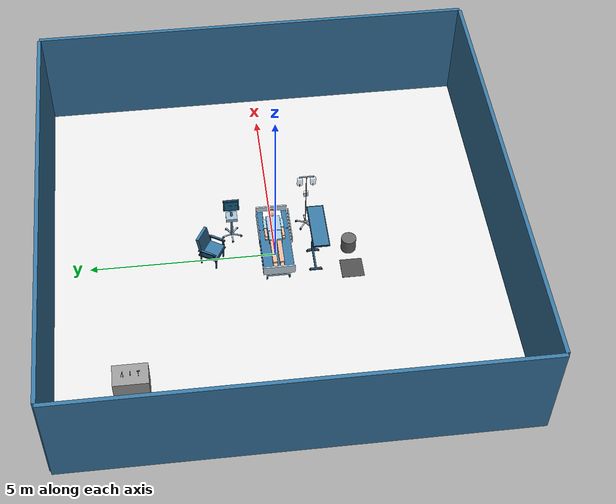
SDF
<sdf version="1.6">
 <world name="sala_chirurgica">
  <gravity>0 0 -9.8</gravity>
  <physics default="0" name="default_physics" type="ode">
   <max_step_size>0.0045</max_step_size>
   <real_time_factor>1</real_time_factor>
   <real_time_update_rate>0</real_time_update_rate>
  </physics>
  <scene><ambient>0.8 0.8 0.8 1</ambient><background>0.3 0.3 0.3 1</background><shadows>false</shadows></scene>
  <light name="sun" type="directional">
   <cast_shadows>false</cast_shadows>
   <pose>0 0 10 0 0 0</pose>
   <diffuse>0.9 0.9 0.9 1</diffuse>
   <specular>0.0 0.0 0.0 1</specular>
   <direction>-0.5 0.1 -0.9</direction>
  </light>
  <model name="white_floor">
   <static>true</static>
   <link name="link">
    <collision name="collision"><geometry><box><size>12 12 0.02</size></box></geometry></collision>
    <visual name="visual">
     <geometry><box><size>12 12 0.02</size></box></geometry>
     <material>
      <ambient>0.9 0.9 0.9 1</ambient>
      <diffuse>0.9 0.9 0.9 1</diffuse>
      <specular>0.0 0.0 0.0 1</specular>
     </material>
    </visual>
   </link>
  </model>
  <model name="walls">
   <static>true</static>
   <link name="link">
    <visual name="v_n">
     <pose>0 6 1.5 0 0 0</pose>
     <geometry><box><size>11.9 0.1 3</size></box></geometry>
     <material>
      <ambient>0.22 0.47 0.64 1</ambient>
      <diffuse>0.22 0.47 0.64 1</diffuse>
      <specular>0.1 0.1 0.1 1</specular>
     </material>
    </visual>
    <collision name="c_n">
     <pose>0 6 1.5 0 0 0</pose>
     <geometry><box><size>11.9 0.1 3</size></box></geometry>
    </collision>
    <visual name="v_s">
     <pose>0 -6 1.5 0 0 0</pose>
     <geometry><box><size>11.9 0.1 3</size></box></geometry>
     <material>
      <ambient>0.22 0.47 0.64 1</ambient>
      <diffuse>0.22 0.47 0.64 1</diffuse>
      <specular>0.1 0.1 0.1 1</specular>
     </material>
    </visual>
    <collision name="c_s">
     <pose>0 -6 1.5 0 0 0</pose>
     <geometry><box><size>11.9 0.1 3</size></box></geometry>
    </collision>
    <visual name="v_e">
     <pose>6 0 1.5 0 0 0</pose>
     <geometry><box><size>0.1 12 3</size></box></geometry>
     <material>
      <ambient>0.22 0.47 0.64 1</ambient>
      <diffuse>0.22 0.47 0.64 1</diffuse>
      <specular>0.1 0.1 0.1 1</specular>
     </material>
    </visual>
    <collision name="c_e">
     <pose>6 0 1.5 0 0 0</pose>
     <geometry><box><size>0.1 12 3</size></box></geometry>
    </collision>
    <visual name="v_w">
     <pose>-6 0 1.5 0 0 0</pose>
     <geometry><box><size>0.1 12 3</size></box></geometry>
     <material>
      <ambient>0.22 0.47 0.64 1</ambient>
      <diffuse>0.22 0.47 0.64 1</diffuse>
      <specular>0.1 0.1 0.1 1</specular>
     </material>
    </visual>
    <collision name="c_w">
     <pose>-6 0 1.5 0 0 0</pose>
     <geometry><box><size>0.1 12 3</size></box></geometry>
    </collision>
   </link>
  </model>
  <model name="trolley_bed_patient">
   <static>true</static>
   <link name="bed_link">
    <visual name="v1">
     <pose>0 -0.3 0.14 0 0 0</pose>
     <geometry><box><size>1.7 0.04 0.05</size></box></geometry>
     <material>
      <ambient>0.66 0.76 0.83 1</ambient>
      <diffuse>0.66 0.76 0.83 1</diffuse>
      <specular>0.5 0.5 0.5 1</specular>
     </material>
    </visual>
    <visual name="v2">
     <pose>-0.8 0 0.14 0 0 0</pose>
     <geometry><box><size>0.04 0.64 0.05</size></box></geometry>
     <material>
      <ambient>0.66 0.76 0.83 1</ambient>
      <diffuse>0.66 0.76 0.83 1</diffuse>
      <specular>0.5 0.5 0.5 1</specular>
     </material>
    </visual>
    <visual name="v3">
     <pose>-0.5 0 0.31 0 0 0</pose>
     <geometry><box><size>0.12 0.4 0.34</size></box></geometry>
     <material>
      <ambient>0.62 0.74 0.82 1</ambient>
      <diffuse>0.62 0.74 0.82 1</diffuse>
      <specular>0.1 0.1 0.1 1</specular>
     </material>
    </visual>
    <collision name="c3">
     <pose>-0.5 0 0.31 0 0 0</pose>
     <geometry><box><size>0.12 0.4 0.34</size></box></geometry>
    </collision>
    <visual name="v4">
     <pose>-0.8 -0.3 0.06 1.5708 0 0</pose>
     <geometry><cylinder><radius>0.06</radius><length>0.035</length></cylinder></geometry>
     <material>
      <ambient>0.15 0.3 0.42 1</ambient>
      <diffuse>0.15 0.3 0.42 1</diffuse>
      <specular>0.1 0.1 0.1 1</specular>
     </material>
    </visual>
    <visual name="v5">
     <pose>-0.8 0.3 0.06 1.5708 0 0</pose>
     <geometry><cylinder><radius>0.06</radius><length>0.035</length></cylinder></geometry>
     <material>
      <ambient>0.15 0.3 0.42 1</ambient>
      <diffuse>0.15 0.3 0.42 1</diffuse>
      <specular>0.1 0.1 0.1 1</specular>
     </material>
    </visual>
    <visual name="v6">
     <pose>0 0.3 0.14 0 0 0</pose>
     <geometry><box><size>1.7 0.04 0.05</size></box></geometry>
     <material>
      <ambient>0.66 0.76 0.83 1</ambient>
      <diffuse>0.66 0.76 0.83 1</diffuse>
      <specular>0.5 0.5 0.5 1</specular>
     </material>
    </visual>
    <visual name="v7">
     <pose>0.8 0 0.14 0 0 0</pose>
     <geometry><box><size>0.04 0.64 0.05</size></box></geometry>
     <material>
      <ambient>0.66 0.76 0.83 1</ambient>
      <diffuse>0.66 0.76 0.83 1</diffuse>
      <specular>0.5 0.5 0.5 1</specular>
     </material>
    </visual>
    <visual name="v8">
     <pose>0.5 0 0.31 0 0 0</pose>
     <geometry><box><size>0.12 0.4 0.34</size></box></geometry>
     <material>
      <ambient>0.62 0.74 0.82 1</ambient>
      <diffuse>0.62 0.74 0.82 1</diffuse>
      <specular>0.1 0.1 0.1 1</specular>
     </material>
    </visual>
    <collision name="c8">
     <pose>0.5 0 0.31 0 0 0</pose>
     <geometry><box><size>0.12 0.4 0.34</size></box></geometry>
    </collision>
    <visual name="v9">
     <pose>0.8 -0.3 0.06 1.5708 0 0</pose>
     <geometry><cylinder><radius>0.06</radius><length>0.035</length></cylinder></geometry>
     <material>
      <ambient>0.15 0.3 0.42 1</ambient>
      <diffuse>0.15 0.3 0.42 1</diffuse>
      <specular>0.1 0.1 0.1 1</specular>
     </material>
    </visual>
    <visual name="v10">
     <pose>0.8 0.3 0.06 1.5708 0 0</pose>
     <geometry><cylinder><radius>0.06</radius><length>0.035</length></cylinder></geometry>
     <material>
      <ambient>0.15 0.3 0.42 1</ambient>
      <diffuse>0.15 0.3 0.42 1</diffuse>
      <specular>0.1 0.1 0.1 1</specular>
     </material>
    </visual>
    <collision name="c11">
     <pose>0 0 0.14 0 0 0</pose>
     <geometry><box><size>1.7 0.64 0.05</size></box></geometry>
    </collision>
    <visual name="v12">
     <pose>0 0 0.505 0 0 0</pose>
     <geometry><box><size>2 0.84 0.05</size></box></geometry>
     <material>
      <ambient>0.62 0.74 0.82 1</ambient>
      <diffuse>0.62 0.74 0.82 1</diffuse>
      <specular>0.1 0.1 0.1 1</specular>
     </material>
    </visual>
    <collision name="c12">
     <pose>0 0 0.505 0 0 0</pose>
     <geometry><box><size>2 0.84 0.05</size></box></geometry>
    </collision>
    <visual name="v13">
     <pose>0 0 0.59 0 0 0</pose>
     <geometry><box><size>1.96 0.8 0.12</size></box></geometry>
     <material>
      <ambient>0.22 0.47 0.64 1</ambient>
      <diffuse>0.22 0.47 0.64 1</diffuse>
      <specular>0.15 0.15 0.15 1</specular>
     </material>
    </visual>
    <collision name="c13">
     <pose>0 0 0.59 0 0 0</pose>
     <geometry><box><size>1.96 0.8 0.12</size></box></geometry>
    </collision>
    <visual name="v14">
     <pose>0.35 0 0.651 0 0 0</pose>
     <geometry><box><size>0.01 0.8 0.002</size></box></geometry>
     <material>
      <ambient>0.12 0.27 0.38 1</ambient>
      <diffuse>0.12 0.27 0.38 1</diffuse>
      <specular>0.1 0.1 0.1 1</specular>
     </material>
    </visual>
    <visual name="v15">
     <pose>1.02 0 0.65 0 0 0</pose>
     <geometry><box><size>0.04 0.84 0.34</size></box></geometry>
     <material>
      <ambient>0.78 0.87 0.92 1</ambient>
      <diffuse>0.78 0.87 0.92 1</diffuse>
      <specular>0.1 0.1 0.1 1</specular>
     </material>
    </visual>
    <collision name="c15">
     <pose>1.02 0 0.65 0 0 0</pose>
     <geometry><box><size>0.04 0.84 0.34</size></box></geometry>
    </collision>
    <visual name="v16">
     <pose>-1.02 0 0.62 0 0 0</pose>
     <geometry><box><size>0.04 0.84 0.28</size></box></geometry>
     <material>
      <ambient>0.78 0.87 0.92 1</ambient>
      <diffuse>0.78 0.87 0.92 1</diffuse>
      <specular>0.1 0.1 0.1 1</specular>
     </material>
    </visual>
    <collision name="c16">
     <pose>-1.02 0 0.62 0 0 0</pose>
     <geometry><box><size>0.04 0.84 0.28</size></box></geometry>
    </collision>
    <visual name="v17">
     <pose>0.3 -0.43 0.9 0 0 0</pose>
     <geometry><box><size>1 0.025 0.025</size></box></geometry>
     <material>
      <ambient>0.66 0.76 0.83 1</ambient>
      <diffuse>0.66 0.76 0.83 1</diffuse>
      <specular>0.6 0.6 0.6 1</specular>
     </material>
    </visual>
    <visual name="v18">
     <pose>0.3 -0.43 0.78 0 0 0</pose>
     <geometry><box><size>1 0.025 0.025</size></box></geometry>
     <material>
      <ambient>0.66 0.76 0.83 1</ambient>
      <diffuse>0.66 0.76 0.83 1</diffuse>
      <specular>0.6 0.6 0.6 1</specular>
     </material>
    </visual>
    <visual name="v19">
     <pose>-0.2 -0.43 0.82 0 0 0</pose>
     <geometry><box><size>0.025 0.025 0.2</size></box></geometry>
     <material>
      <ambient>0.66 0.76 0.83 1</ambient>
      <diffuse>0.66 0.76 0.83 1</diffuse>
      <specular>0.6 0.6 0.6 1</specular>
     </material>
    </visual>
    <visual name="v20">
     <pose>0.8 -0.43 0.82 0 0 0</pose>
     <geometry><box><size>0.025 0.025 0.2</size></box></geometry>
     <material>
      <ambient>0.66 0.76 0.83 1</ambient>
      <diffuse>0.66 0.76 0.83 1</diffuse>
      <specular>0.6 0.6 0.6 1</specular>
     </material>
    </visual>
    <visual name="v21">
     <pose>0.3 0.43 0.9 0 0 0</pose>
     <geometry><box><size>1 0.025 0.025</size></box></geometry>
     <material>
      <ambient>0.66 0.76 0.83 1</ambient>
      <diffuse>0.66 0.76 0.83 1</diffuse>
      <specular>0.6 0.6 0.6 1</specular>
     </material>
    </visual>
    <visual name="v22">
     <pose>0.3 0.43 0.78 0 0 0</pose>
     <geometry><box><size>1 0.025 0.025</size></box></geometry>
     <material>
      <ambient>0.66 0.76 0.83 1</ambient>
      <diffuse>0.66 0.76 0.83 1</diffuse>
      <specular>0.6 0.6 0.6 1</specular>
     </material>
    </visual>
    <visual name="v23">
     <pose>-0.2 0.43 0.82 0 0 0</pose>
     <geometry><box><size>0.025 0.025 0.2</size></box></geometry>
     <material>
      <ambient>0.66 0.76 0.83 1</ambient>
      <diffuse>0.66 0.76 0.83 1</diffuse>
      <specular>0.6 0.6 0.6 1</specular>
     </material>
    </visual>
    <visual name="v24">
     <pose>0.8 0.43 0.82 0 0 0</pose>
     <geometry><box><size>0.025 0.025 0.2</size></box></geometry>
     <material>
      <ambient>0.66 0.76 0.83 1</ambient>
      <diffuse>0.66 0.76 0.83 1</diffuse>
      <specular>0.6 0.6 0.6 1</specular>
     </material>
    </visual>
    <visual name="v25">
     <pose>0.74 0 0.695 0 0 0</pose>
     <geometry><box><size>0.38 0.5 0.09</size></box></geometry>
     <material>
      <ambient>0.9 0.94 0.97 1</ambient>
      <diffuse>0.9 0.94 0.97 1</diffuse>
      <specular>0.1 0.1 0.1 1</specular>
     </material>
    </visual>
    <visual name="v26">
     <pose>0.74 0 0.84 0 0 0</pose>
     <geometry><sphere><radius>0.1</radius></sphere></geometry>
     <material>
      <ambient>0.9 0.72 0.6 1</ambient>
      <diffuse>0.9 0.72 0.6 1</diffuse>
      <specular>0.1 0.1 0.1 1</specular>
     </material>
    </visual>
    <visual name="v27">
     <pose>0.78 0 0.83 0 0 0</pose>
     <geometry><sphere><radius>0.09</radius></sphere></geometry>
     <material>
      <ambient>0.25 0.17 0.1 1</ambient>
      <diffuse>0.25 0.17 0.1 1</diffuse>
      <specular>0.1 0.1 0.1 1</specular>
     </material>
    </visual>
    <visual name="v28">
     <pose>0.4 0 0.75 0 0 0</pose>
     <geometry><box><size>0.5 0.36 0.2</size></box></geometry>
     <material>
      <ambient>0.62 0.78 0.88 1</ambient>
      <diffuse>0.62 0.78 0.88 1</diffuse>
      <specular>0.1 0.1 0.1 1</specular>
     </material>
    </visual>
    <collision name="c28">
     <pose>0.4 0 0.75 0 0 0</pose>
     <geometry><box><size>0.5 0.36 0.2</size></box></geometry>
    </collision>
    <visual name="v29">
     <pose>0 0 0.74 0 0 0</pose>
     <geometry><box><size>0.3 0.34 0.18</size></box></geometry>
     <material>
      <ambient>0.62 0.78 0.88 1</ambient>
      <diffuse>0.62 0.78 0.88 1</diffuse>
      <specular>0.1 0.1 0.1 1</specular>
     </material>
    </visual>
    <visual name="v30">
     <pose>-0.5 -0.09 0.72 0 0 0</pose>
     <geometry><box><size>0.75 0.12 0.12</size></box></geometry>
     <material>
      <ambient>0.9 0.72 0.6 1</ambient>
      <diffuse>0.9 0.72 0.6 1</diffuse>
      <specular>0.1 0.1 0.1 1</specular>
     </material>
    </visual>
    <visual name="v31">
     <pose>-0.93 -0.09 0.7 0 0 0</pose>
     <geometry><box><size>0.12 0.1 0.07</size></box></geometry>
     <material>
      <ambient>0.9 0.72 0.6 1</ambient>
      <diffuse>0.9 0.72 0.6 1</diffuse>
      <specular>0.1 0.1 0.1 1</specular>
     </material>
    </visual>
    <visual name="v32">
     <pose>0.45 -0.23 0.74 0 0 0</pose>
     <geometry><box><size>0.3 0.08 0.08</size></box></geometry>
     <material>
      <ambient>0.62 0.78 0.88 1</ambient>
      <diffuse>0.62 0.78 0.88 1</diffuse>
      <specular>0.1 0.1 0.1 1</specular>
     </material>
    </visual>
    <visual name="v33">
     <pose>0.18 -0.23 0.72 0 0 0</pose>
     <geometry><box><size>0.3 0.07 0.07</size></box></geometry>
     <material>
      <ambient>0.9 0.72 0.6 1</ambient>
      <diffuse>0.9 0.72 0.6 1</diffuse>
      <specular>0.1 0.1 0.1 1</specular>
     </material>
    </visual>
    <visual name="v34">
     <pose>0 -0.23 0.7 0 0 0</pose>
     <geometry><box><size>0.08 0.07 0.05</size></box></geometry>
     <material>
      <ambient>0.9 0.72 0.6 1</ambient>
      <diffuse>0.9 0.72 0.6 1</diffuse>
      <specular>0.1 0.1 0.1 1</specular>
     </material>
    </visual>
    <visual name="v35">
     <pose>-0.5 0.09 0.72 0 0 0</pose>
     <geometry><box><size>0.75 0.12 0.12</size></box></geometry>
     <material>
      <ambient>0.9 0.72 0.6 1</ambient>
      <diffuse>0.9 0.72 0.6 1</diffuse>
      <specular>0.1 0.1 0.1 1</specular>
     </material>
    </visual>
    <visual name="v36">
     <pose>-0.93 0.09 0.7 0 0 0</pose>
     <geometry><box><size>0.12 0.1 0.07</size></box></geometry>
     <material>
      <ambient>0.9 0.72 0.6 1</ambient>
      <diffuse>0.9 0.72 0.6 1</diffuse>
      <specular>0.1 0.1 0.1 1</specular>
     </material>
    </visual>
    <visual name="v37">
     <pose>0.45 0.23 0.74 0 0 0</pose>
     <geometry><box><size>0.3 0.08 0.08</size></box></geometry>
     <material>
      <ambient>0.62 0.78 0.88 1</ambient>
      <diffuse>0.62 0.78 0.88 1</diffuse>
      <specular>0.1 0.1 0.1 1</specular>
     </material>
    </visual>
    <visual name="v38">
     <pose>0.18 0.23 0.72 0 0 0</pose>
     <geometry><box><size>0.3 0.07 0.07</size></box></geometry>
     <material>
      <ambient>0.9 0.72 0.6 1</ambient>
      <diffuse>0.9 0.72 0.6 1</diffuse>
      <specular>0.1 0.1 0.1 1</specular>
     </material>
    </visual>
    <visual name="v39">
     <pose>0 0.23 0.7 0 0 0</pose>
     <geometry><box><size>0.08 0.07 0.05</size></box></geometry>
     <material>
      <ambient>0.9 0.72 0.6 1</ambient>
      <diffuse>0.9 0.72 0.6 1</diffuse>
      <specular>0.1 0.1 0.1 1</specular>
     </material>
    </visual>
   </link>
  </model>
  <model name="IVSTAND">
   <static>true</static>
   <pose>1.0 -0.95 0 0 0 0</pose>
   <link name="iv_link">
    <visual name="v1">
     <pose>0 0 0.075 0 0 0</pose>
     <geometry><cylinder><radius>0.045</radius><length>0.05</length></cylinder></geometry>
     <material>
      <ambient>0.72 0.75 0.78 1</ambient>
      <diffuse>0.72 0.75 0.78 1</diffuse>
      <specular>0.4 0.4 0.4 1</specular>
     </material>
    </visual>
    <visual name="v2">
     <pose>0.13 0 0.06 0 0 0</pose>
     <geometry><box><size>0.26 0.035 0.02</size></box></geometry>
     <material>
      <ambient>0.72 0.75 0.78 1</ambient>
      <diffuse>0.72 0.75 0.78 1</diffuse>
      <specular>0.4 0.4 0.4 1</specular>
     </material>
    </visual>
    <visual name="v3">
     <pose>0.26 0 0.03 0 0 0</pose>
     <geometry><sphere><radius>0.03</radius></sphere></geometry>
     <material>
      <ambient>0.22 0.23 0.25 1</ambient>
      <diffuse>0.22 0.23 0.25 1</diffuse>
      <specular>0.1 0.1 0.1 1</specular>
     </material>
    </visual>
    <visual name="v4">
     <pose>0.0401722 0.123637 0.06 0 0 1.25664</pose>
     <geometry><box><size>0.26 0.035 0.02</size></box></geometry>
     <material>
      <ambient>0.72 0.75 0.78 1</ambient>
      <diffuse>0.72 0.75 0.78 1</diffuse>
      <specular>0.4 0.4 0.4 1</specular>
     </material>
    </visual>
    <visual name="v5">
     <pose>0.0803444 0.247275 0.03 0 0 0</pose>
     <geometry><sphere><radius>0.03</radius></sphere></geometry>
     <material>
      <ambient>0.22 0.23 0.25 1</ambient>
      <diffuse>0.22 0.23 0.25 1</diffuse>
      <specular>0.1 0.1 0.1 1</specular>
     </material>
    </visual>
    <visual name="v6">
     <pose>-0.105172 0.0764121 0.06 0 0 2.51327</pose>
     <geometry><box><size>0.26 0.035 0.02</size></box></geometry>
     <material>
      <ambient>0.72 0.75 0.78 1</ambient>
      <diffuse>0.72 0.75 0.78 1</diffuse>
      <specular>0.4 0.4 0.4 1</specular>
     </material>
    </visual>
    <visual name="v7">
     <pose>-0.210344 0.152824 0.03 0 0 0</pose>
     <geometry><sphere><radius>0.03</radius></sphere></geometry>
     <material>
      <ambient>0.22 0.23 0.25 1</ambient>
      <diffuse>0.22 0.23 0.25 1</diffuse>
      <specular>0.1 0.1 0.1 1</specular>
     </material>
    </visual>
    <visual name="v8">
     <pose>-0.105172 -0.0764121 0.06 0 0 3.76991</pose>
     <geometry><box><size>0.26 0.035 0.02</size></box></geometry>
     <material>
      <ambient>0.72 0.75 0.78 1</ambient>
      <diffuse>0.72 0.75 0.78 1</diffuse>
      <specular>0.4 0.4 0.4 1</specular>
     </material>
    </visual>
    <visual name="v9">
     <pose>-0.210344 -0.152824 0.03 0 0 0</pose>
     <geometry><sphere><radius>0.03</radius></sphere></geometry>
     <material>
      <ambient>0.22 0.23 0.25 1</ambient>
      <diffuse>0.22 0.23 0.25 1</diffuse>
      <specular>0.1 0.1 0.1 1</specular>
     </material>
    </visual>
    <visual name="v10">
     <pose>0.0401722 -0.123637 0.06 0 0 5.02655</pose>
     <geometry><box><size>0.26 0.035 0.02</size></box></geometry>
     <material>
      <ambient>0.72 0.75 0.78 1</ambient>
      <diffuse>0.72 0.75 0.78 1</diffuse>
      <specular>0.4 0.4 0.4 1</specular>
     </material>
    </visual>
    <visual name="v11">
     <pose>0.0803444 -0.247275 0.03 0 0 0</pose>
     <geometry><sphere><radius>0.03</radius></sphere></geometry>
     <material>
      <ambient>0.22 0.23 0.25 1</ambient>
      <diffuse>0.22 0.23 0.25 1</diffuse>
      <specular>0.1 0.1 0.1 1</specular>
     </material>
    </visual>
    <collision name="c12">
     <pose>0 0 0.04 0 0 0</pose>
     <geometry><cylinder><radius>0.26</radius><length>0.05</length></cylinder></geometry>
    </collision>
    <visual name="v13">
     <pose>0 0 1 0 0 0</pose>
     <geometry><cylinder><radius>0.012</radius><length>1.8</length></cylinder></geometry>
     <material>
      <ambient>0.72 0.75 0.78 1</ambient>
      <diffuse>0.72 0.75 0.78 1</diffuse>
      <specular>0.6 0.6 0.6 1</specular>
     </material>
    </visual>
    <collision name="c14">
     <pose>0 0 1 0 0 0</pose>
     <geometry><cylinder><radius>0.04</radius><length>2</length></cylinder></geometry>
    </collision>
    <visual name="v15">
     <pose>0 0 1.92 0 0 0</pose>
     <geometry><box><size>0.03 0.4 0.02</size></box></geometry>
     <material>
      <ambient>0.72 0.75 0.78 1</ambient>
      <diffuse>0.72 0.75 0.78 1</diffuse>
      <specular>0.6 0.6 0.6 1</specular>
     </material>
    </visual>
    <visual name="v16">
     <pose>0 -0.18 1.89 0 0 0</pose>
     <geometry><box><size>0.012 0.012 0.05</size></box></geometry>
     <material>
      <ambient>0.72 0.75 0.78 1</ambient>
      <diffuse>0.72 0.75 0.78 1</diffuse>
      <specular>0.1 0.1 0.1 1</specular>
     </material>
    </visual>
    <visual name="v17">
     <pose>0 -0.18 1.74 0 0 0</pose>
     <geometry><box><size>0.07 0.14 0.22</size></box></geometry>
     <material>
      <ambient>0.75 0.9 1 1</ambient>
      <diffuse>0.75 0.9 1 1</diffuse>
      <specular>0.5 0.5 0.5 1</specular>
     </material>
     <transparency>0.45</transparency>
    </visual>
    <visual name="v18">
     <pose>0 -0.18 1.6 0 0 0</pose>
     <geometry><cylinder><radius>0.01</radius><length>0.08</length></cylinder></geometry>
     <material>
      <ambient>0.96 0.96 0.97 1</ambient>
      <diffuse>0.96 0.96 0.97 1</diffuse>
      <specular>0.1 0.1 0.1 1</specular>
     </material>
    </visual>
    <visual name="v19">
     <pose>0 0.18 1.89 0 0 0</pose>
     <geometry><box><size>0.012 0.012 0.05</size></box></geometry>
     <material>
      <ambient>0.72 0.75 0.78 1</ambient>
      <diffuse>0.72 0.75 0.78 1</diffuse>
      <specular>0.1 0.1 0.1 1</specular>
     </material>
    </visual>
    <visual name="v20">
     <pose>0 0.18 1.74 0 0 0</pose>
     <geometry><box><size>0.07 0.14 0.22</size></box></geometry>
     <material>
      <ambient>0.75 0.9 1 1</ambient>
      <diffuse>0.75 0.9 1 1</diffuse>
      <specular>0.5 0.5 0.5 1</specular>
     </material>
     <transparency>0.45</transparency>
    </visual>
    <visual name="v21">
     <pose>0 0.18 1.6 0 0 0</pose>
     <geometry><cylinder><radius>0.01</radius><length>0.08</length></cylinder></geometry>
     <material>
      <ambient>0.96 0.96 0.97 1</ambient>
      <diffuse>0.96 0.96 0.97 1</diffuse>
      <specular>0.1 0.1 0.1 1</specular>
     </material>
    </visual>
    <visual name="v22">
     <pose>0.04 0 1.2 0 0 0</pose>
     <geometry><box><size>0.08 0.12 0.14</size></box></geometry>
     <material>
      <ambient>0.9 0.92 0.93 1</ambient>
      <diffuse>0.9 0.92 0.93 1</diffuse>
      <specular>0.1 0.1 0.1 1</specular>
     </material>
    </visual>
    <visual name="v23">
     <pose>0.082 0 1.22 0 0 0</pose>
     <geometry><box><size>0.004 0.09 0.06</size></box></geometry>
     <material>
      <ambient>0.1 0.45 0.6 1</ambient>
      <diffuse>0.1 0.45 0.6 1</diffuse>
      <specular>0.1 0.1 0.1 1</specular>
      <emissive>0.05 0.25 0.35 1</emissive>
     </material>
    </visual>
   </link>
  </model>
  <model name="BPCart">
   <static>true</static>
   <pose>0.8 1.1 0 0 0 -3.14159</pose>
   <link name="cart_link">
    <visual name="v1">
     <pose>0 0 0.075 0 0 0</pose>
     <geometry><cylinder><radius>0.045</radius><length>0.05</length></cylinder></geometry>
     <material>
      <ambient>0.66 0.76 0.83 1</ambient>
      <diffuse>0.66 0.76 0.83 1</diffuse>
      <specular>0.4 0.4 0.4 1</specular>
     </material>
    </visual>
    <visual name="v2">
     <pose>0.13 0 0.06 0 0 0</pose>
     <geometry><box><size>0.26 0.035 0.02</size></box></geometry>
     <material>
      <ambient>0.66 0.76 0.83 1</ambient>
      <diffuse>0.66 0.76 0.83 1</diffuse>
      <specular>0.4 0.4 0.4 1</specular>
     </material>
    </visual>
    <visual name="v3">
     <pose>0.26 0 0.03 0 0 0</pose>
     <geometry><sphere><radius>0.03</radius></sphere></geometry>
     <material>
      <ambient>0.15 0.3 0.42 1</ambient>
      <diffuse>0.15 0.3 0.42 1</diffuse>
      <specular>0.1 0.1 0.1 1</specular>
     </material>
    </visual>
    <visual name="v4">
     <pose>0.0401722 0.123637 0.06 0 0 1.25664</pose>
     <geometry><box><size>0.26 0.035 0.02</size></box></geometry>
     <material>
      <ambient>0.66 0.76 0.83 1</ambient>
      <diffuse>0.66 0.76 0.83 1</diffuse>
      <specular>0.4 0.4 0.4 1</specular>
     </material>
    </visual>
    <visual name="v5">
     <pose>0.0803444 0.247275 0.03 0 0 0</pose>
     <geometry><sphere><radius>0.03</radius></sphere></geometry>
     <material>
      <ambient>0.15 0.3 0.42 1</ambient>
      <diffuse>0.15 0.3 0.42 1</diffuse>
      <specular>0.1 0.1 0.1 1</specular>
     </material>
    </visual>
    <visual name="v6">
     <pose>-0.105172 0.0764121 0.06 0 0 2.51327</pose>
     <geometry><box><size>0.26 0.035 0.02</size></box></geometry>
     <material>
      <ambient>0.66 0.76 0.83 1</ambient>
      <diffuse>0.66 0.76 0.83 1</diffuse>
      <specular>0.4 0.4 0.4 1</specular>
     </material>
    </visual>
    <visual name="v7">
     <pose>-0.210344 0.152824 0.03 0 0 0</pose>
     <geometry><sphere><radius>0.03</radius></sphere></geometry>
     <material>
      <ambient>0.15 0.3 0.42 1</ambient>
      <diffuse>0.15 0.3 0.42 1</diffuse>
      <specular>0.1 0.1 0.1 1</specular>
     </material>
    </visual>
    <visual name="v8">
     <pose>-0.105172 -0.0764121 0.06 0 0 3.76991</pose>
     <geometry><box><size>0.26 0.035 0.02</size></box></geometry>
     <material>
      <ambient>0.66 0.76 0.83 1</ambient>
      <diffuse>0.66 0.76 0.83 1</diffuse>
      <specular>0.4 0.4 0.4 1</specular>
     </material>
    </visual>
    <visual name="v9">
     <pose>-0.210344 -0.152824 0.03 0 0 0</pose>
     <geometry><sphere><radius>0.03</radius></sphere></geometry>
     <material>
      <ambient>0.15 0.3 0.42 1</ambient>
      <diffuse>0.15 0.3 0.42 1</diffuse>
      <specular>0.1 0.1 0.1 1</specular>
     </material>
    </visual>
    <visual name="v10">
     <pose>0.0401722 -0.123637 0.06 0 0 5.02655</pose>
     <geometry><box><size>0.26 0.035 0.02</size></box></geometry>
     <material>
      <ambient>0.66 0.76 0.83 1</ambient>
      <diffuse>0.66 0.76 0.83 1</diffuse>
      <specular>0.4 0.4 0.4 1</specular>
     </material>
    </visual>
    <visual name="v11">
     <pose>0.0803444 -0.247275 0.03 0 0 0</pose>
     <geometry><sphere><radius>0.03</radius></sphere></geometry>
     <material>
      <ambient>0.15 0.3 0.42 1</ambient>
      <diffuse>0.15 0.3 0.42 1</diffuse>
      <specular>0.1 0.1 0.1 1</specular>
     </material>
    </visual>
    <collision name="c12">
     <pose>0 0 0.04 0 0 0</pose>
     <geometry><cylinder><radius>0.26</radius><length>0.05</length></cylinder></geometry>
    </collision>
    <visual name="v13">
     <pose>0 0 0.55 0 0 0</pose>
     <geometry><cylinder><radius>0.03</radius><length>0.9</length></cylinder></geometry>
     <material>
      <ambient>0.34 0.5 0.62 1</ambient>
      <diffuse>0.34 0.5 0.62 1</diffuse>
      <specular>0.1 0.1 0.1 1</specular>
     </material>
    </visual>
    <collision name="c13">
     <pose>0 0 0.55 0 0 0</pose>
     <geometry><cylinder><radius>0.03</radius><length>0.9</length></cylinder></geometry>
    </collision>
    <visual name="v14">
     <pose>0 0 0.78 0 0 0</pose>
     <geometry><box><size>0.28 0.3 0.1</size></box></geometry>
     <material>
      <ambient>0.62 0.74 0.82 1</ambient>
      <diffuse>0.62 0.74 0.82 1</diffuse>
      <specular>0.1 0.1 0.1 1</specular>
     </material>
    </visual>
    <visual name="v15">
     <pose>-0.09 0 1.05 0 0 0</pose>
     <geometry><box><size>0.02 0.3 0.02</size></box></geometry>
     <material>
      <ambient>0.15 0.3 0.42 1</ambient>
      <diffuse>0.15 0.3 0.42 1</diffuse>
      <specular>0.1 0.1 0.1 1</specular>
     </material>
    </visual>
    <visual name="v16">
     <pose>0 0 1.25 0 -0.2 0</pose>
     <geometry><box><size>0.06 0.42 0.32</size></box></geometry>
     <material>
      <ambient>0.15 0.3 0.42 1</ambient>
      <diffuse>0.15 0.3 0.42 1</diffuse>
      <specular>0.1 0.1 0.1 1</specular>
     </material>
    </visual>
    <collision name="c16">
     <pose>0 0 1.25 0 -0.2 0</pose>
     <geometry><box><size>0.06 0.42 0.32</size></box></geometry>
    </collision>
    <visual name="v17">
     <pose>0.034 0 1.25 0 -0.2 0</pose>
     <geometry><box><size>0.01 0.36 0.26</size></box></geometry>
     <material>
      <ambient>0.1 0.45 0.6 1</ambient>
      <diffuse>0.1 0.45 0.6 1</diffuse>
      <specular>0.1 0.1 0.1 1</specular>
      <emissive>0.05 0.25 0.35 1</emissive>
     </material>
    </visual>
    <visual name="v18">
     <pose>0.04 0 1.28 0 -0.2 0</pose>
     <geometry><box><size>0.003 0.3 0.006</size></box></geometry>
     <material>
      <ambient>0.2 0.9 0.3 1</ambient>
      <diffuse>0.2 0.9 0.3 1</diffuse>
      <specular>0.1 0.1 0.1 1</specular>
      <emissive>0.2 0.9 0.3 1</emissive>
     </material>
    </visual>
    <visual name="v19">
     <pose>0.04 0 1.22 0 -0.2 0</pose>
     <geometry><box><size>0.003 0.3 0.006</size></box></geometry>
     <material>
      <ambient>0.8 0.12 0.1 1</ambient>
      <diffuse>0.8 0.12 0.1 1</diffuse>
      <specular>0.1 0.1 0.1 1</specular>
      <emissive>0.8 0.12 0.1 1</emissive>
     </material>
    </visual>
   </link>
  </model>
  <model name="bedTable">
   <static>true</static>
   <pose>0 -1.15 0 0 0 0</pose>
   <link name="table_link">
    <collision name="c1">
     <pose>0 0 0.53 0 0 0</pose>
     <geometry><box><size>1.4 0.45 1.06</size></box></geometry>
    </collision>
    <visual name="v2">
     <pose>0 0 1.0375 0 0 0</pose>
     <geometry><box><size>1.4 0.45 0.035</size></box></geometry>
     <material>
      <ambient>0.12 0.27 0.38 1</ambient>
      <diffuse>0.12 0.27 0.38 1</diffuse>
      <specular>0.3 0.3 0.3 1</specular>
     </material>
    </visual>
    <visual name="v3">
     <pose>0 0 1.0575 0 0 0</pose>
     <geometry><box><size>1.36 0.41 0.005</size></box></geometry>
     <material>
      <ambient>0.22 0.47 0.64 1</ambient>
      <diffuse>0.22 0.47 0.64 1</diffuse>
      <specular>0.5 0.5 0.5 1</specular>
     </material>
    </visual>
    <visual name="v4">
     <pose>0 0.12 1 0 0 0</pose>
     <geometry><box><size>0.14 0.14 0.04</size></box></geometry>
     <material>
      <ambient>0.15 0.3 0.42 1</ambient>
      <diffuse>0.15 0.3 0.42 1</diffuse>
      <specular>0.1 0.1 0.1 1</specular>
     </material>
    </visual>
    <visual name="v5">
     <pose>0 0.12 0.55 0 0 0</pose>
     <geometry><box><size>0.08 0.08 0.94</size></box></geometry>
     <material>
      <ambient>0.15 0.3 0.42 1</ambient>
      <diffuse>0.15 0.3 0.42 1</diffuse>
      <specular>0.3 0.3 0.3 1</specular>
     </material>
    </visual>
    <visual name="v6">
     <pose>0 0.12 0.05 0 0 0</pose>
     <geometry><box><size>0.06 0.3 0.04</size></box></geometry>
     <material>
      <ambient>0.15 0.3 0.42 1</ambient>
      <diffuse>0.15 0.3 0.42 1</diffuse>
      <specular>0.3 0.3 0.3 1</specular>
     </material>
    </visual>
    <visual name="v7">
     <pose>0 -0.03 0.015 0 0 0</pose>
     <geometry><box><size>0.05 0.05 0.03</size></box></geometry>
     <material>
      <ambient>0.08 0.16 0.23 1</ambient>
      <diffuse>0.08 0.16 0.23 1</diffuse>
      <specular>0.1 0.1 0.1 1</specular>
     </material>
    </visual>
    <visual name="v8">
     <pose>0 0.27 0.015 0 0 0</pose>
     <geometry><box><size>0.05 0.05 0.03</size></box></geometry>
     <material>
      <ambient>0.08 0.16 0.23 1</ambient>
      <diffuse>0.08 0.16 0.23 1</diffuse>
      <specular>0.1 0.1 0.1 1</specular>
     </material>
    </visual>
    <visual name="v9">
     <pose>-0.65 0.12 0.05 0 0 0</pose>
     <geometry><box><size>0.06 0.3 0.04</size></box></geometry>
     <material>
      <ambient>0.15 0.3 0.42 1</ambient>
      <diffuse>0.15 0.3 0.42 1</diffuse>
      <specular>0.3 0.3 0.3 1</specular>
     </material>
    </visual>
    <visual name="v10">
     <pose>-0.65 -0.03 0.015 0 0 0</pose>
     <geometry><box><size>0.05 0.05 0.03</size></box></geometry>
     <material>
      <ambient>0.08 0.16 0.23 1</ambient>
      <diffuse>0.08 0.16 0.23 1</diffuse>
      <specular>0.1 0.1 0.1 1</specular>
     </material>
    </visual>
    <visual name="v11">
     <pose>-0.65 0.27 0.015 0 0 0</pose>
     <geometry><box><size>0.05 0.05 0.03</size></box></geometry>
     <material>
      <ambient>0.08 0.16 0.23 1</ambient>
      <diffuse>0.08 0.16 0.23 1</diffuse>
      <specular>0.1 0.1 0.1 1</specular>
     </material>
    </visual>
    <visual name="v12">
     <pose>-0.325 0.12 0.05 0 0 0</pose>
     <geometry><box><size>0.65 0.05 0.04</size></box></geometry>
     <material>
      <ambient>0.15 0.3 0.42 1</ambient>
      <diffuse>0.15 0.3 0.42 1</diffuse>
      <specular>0.3 0.3 0.3 1</specular>
     </material>
    </visual>
   </link>
  </model>
  <model name="chair">
   <static>true</static>
   <pose>0 1.7 0 0 0 -2.1</pose>
   <link name="chair_link">
    <visual name="v1">
     <pose>-0.22 -0.22 0.18 0 0 0</pose>
     <geometry><cylinder><radius>0.022</radius><length>0.36</length></cylinder></geometry>
     <material>
      <ambient>0.14 0.29 0.4 1</ambient>
      <diffuse>0.14 0.29 0.4 1</diffuse>
      <specular>0.1 0.1 0.1 1</specular>
     </material>
    </visual>
    <visual name="v2">
     <pose>-0.22 0.22 0.18 0 0 0</pose>
     <geometry><cylinder><radius>0.022</radius><length>0.36</length></cylinder></geometry>
     <material>
      <ambient>0.14 0.29 0.4 1</ambient>
      <diffuse>0.14 0.29 0.4 1</diffuse>
      <specular>0.1 0.1 0.1 1</specular>
     </material>
    </visual>
    <visual name="v3">
     <pose>0.22 -0.22 0.18 0 0 0</pose>
     <geometry><cylinder><radius>0.022</radius><length>0.36</length></cylinder></geometry>
     <material>
      <ambient>0.14 0.29 0.4 1</ambient>
      <diffuse>0.14 0.29 0.4 1</diffuse>
      <specular>0.1 0.1 0.1 1</specular>
     </material>
    </visual>
    <visual name="v4">
     <pose>0.22 0.22 0.18 0 0 0</pose>
     <geometry><cylinder><radius>0.022</radius><length>0.36</length></cylinder></geometry>
     <material>
      <ambient>0.14 0.29 0.4 1</ambient>
      <diffuse>0.14 0.29 0.4 1</diffuse>
      <specular>0.1 0.1 0.1 1</specular>
     </material>
    </visual>
    <visual name="v5">
     <pose>0 0 0.37 0 0 0</pose>
     <geometry><box><size>0.54 0.54 0.04</size></box></geometry>
     <material>
      <ambient>0.14 0.29 0.4 1</ambient>
      <diffuse>0.14 0.29 0.4 1</diffuse>
      <specular>0.1 0.1 0.1 1</specular>
     </material>
    </visual>
    <collision name="c5">
     <pose>0 0 0.37 0 0 0</pose>
     <geometry><box><size>0.54 0.54 0.04</size></box></geometry>
    </collision>
    <visual name="v6">
     <pose>0 0 0.42 0 0 0</pose>
     <geometry><box><size>0.5 0.5 0.08</size></box></geometry>
     <material>
      <ambient>0.22 0.47 0.64 1</ambient>
      <diffuse>0.22 0.47 0.64 1</diffuse>
      <specular>0.1 0.1 0.1 1</specular>
     </material>
    </visual>
    <collision name="c6">
     <pose>0 0 0.42 0 0 0</pose>
     <geometry><box><size>0.5 0.5 0.08</size></box></geometry>
    </collision>
    <visual name="v7">
     <pose>-0.25 0 0.72 0 -0.2 0</pose>
     <geometry><box><size>0.08 0.5 0.5</size></box></geometry>
     <material>
      <ambient>0.22 0.47 0.64 1</ambient>
      <diffuse>0.22 0.47 0.64 1</diffuse>
      <specular>0.1 0.1 0.1 1</specular>
     </material>
    </visual>
    <collision name="c7">
     <pose>-0.25 0 0.72 0 -0.2 0</pose>
     <geometry><box><size>0.08 0.5 0.5</size></box></geometry>
    </collision>
    <visual name="v8">
     <pose>0 -0.285 0.6 0 0 0</pose>
     <geometry><box><size>0.5 0.045 0.04</size></box></geometry>
     <material>
      <ambient>0.14 0.29 0.4 1</ambient>
      <diffuse>0.14 0.29 0.4 1</diffuse>
      <specular>0.1 0.1 0.1 1</specular>
     </material>
    </visual>
    <collision name="c8">
     <pose>0 -0.285 0.6 0 0 0</pose>
     <geometry><box><size>0.5 0.045 0.04</size></box></geometry>
    </collision>
    <visual name="v9">
     <pose>0 -0.285 0.625 0 0 0</pose>
     <geometry><box><size>0.34 0.05 0.02</size></box></geometry>
     <material>
      <ambient>0.22 0.47 0.64 1</ambient>
      <diffuse>0.22 0.47 0.64 1</diffuse>
      <specular>0.1 0.1 0.1 1</specular>
     </material>
    </visual>
    <visual name="v10">
     <pose>-0.2 -0.285 0.5 0 0 0</pose>
     <geometry><box><size>0.04 0.04 0.2</size></box></geometry>
     <material>
      <ambient>0.14 0.29 0.4 1</ambient>
      <diffuse>0.14 0.29 0.4 1</diffuse>
      <specular>0.1 0.1 0.1 1</specular>
     </material>
    </visual>
    <visual name="v11">
     <pose>0.2 -0.285 0.5 0 0 0</pose>
     <geometry><box><size>0.04 0.04 0.2</size></box></geometry>
     <material>
      <ambient>0.14 0.29 0.4 1</ambient>
      <diffuse>0.14 0.29 0.4 1</diffuse>
      <specular>0.1 0.1 0.1 1</specular>
     </material>
    </visual>
    <visual name="v12">
     <pose>0 0.285 0.6 0 0 0</pose>
     <geometry><box><size>0.5 0.045 0.04</size></box></geometry>
     <material>
      <ambient>0.14 0.29 0.4 1</ambient>
      <diffuse>0.14 0.29 0.4 1</diffuse>
      <specular>0.1 0.1 0.1 1</specular>
     </material>
    </visual>
    <collision name="c12">
     <pose>0 0.285 0.6 0 0 0</pose>
     <geometry><box><size>0.5 0.045 0.04</size></box></geometry>
    </collision>
    <visual name="v13">
     <pose>0 0.285 0.625 0 0 0</pose>
     <geometry><box><size>0.34 0.05 0.02</size></box></geometry>
     <material>
      <ambient>0.22 0.47 0.64 1</ambient>
      <diffuse>0.22 0.47 0.64 1</diffuse>
      <specular>0.1 0.1 0.1 1</specular>
     </material>
    </visual>
    <visual name="v14">
     <pose>-0.2 0.285 0.5 0 0 0</pose>
     <geometry><box><size>0.04 0.04 0.2</size></box></geometry>
     <material>
      <ambient>0.14 0.29 0.4 1</ambient>
      <diffuse>0.14 0.29 0.4 1</diffuse>
      <specular>0.1 0.1 0.1 1</specular>
     </material>
    </visual>
    <visual name="v15">
     <pose>0.2 0.285 0.5 0 0 0</pose>
     <geometry><box><size>0.04 0.04 0.2</size></box></geometry>
     <material>
      <ambient>0.14 0.29 0.4 1</ambient>
      <diffuse>0.14 0.29 0.4 1</diffuse>
      <specular>0.1 0.1 0.1 1</specular>
     </material>
    </visual>
   </link>
  </model>
  <model name="storage_table">
   <static>true</static>
   <pose>-4 4 0.425 0 0 0</pose>
   <link name="link_tavolo_mag">
    <collision name="collision">
     <geometry><box><size>0.6 0.9 0.85</size></box></geometry>
     <surface><friction><ode><mu>2.0</mu><mu2>2.0</mu2></ode></friction></surface>
    </collision>
    <visual name="visual">
     <geometry><box><size>0.6 0.9 0.85</size></box></geometry>
     <material>
      <ambient>0.5 0.5 0.5 1</ambient>
      <diffuse>0.6 0.6 0.6 1</diffuse>
      <specular>0.2 0.2 0.2 1</specular>
     </material>
    </visual>
   </link>
  </model>
  <model name="scalpel">
   <static>false</static>
   <pose>-4.0 4.0 0.85 0 0 1.5708</pose>
   <link name="corpo_bisturi">
    <inertial>
     <mass>0.02</mass>
     <inertia><ixx>0.00005</ixx><ixy>0</ixy><ixz>0</ixz><iyy>0.00005</iyy><iyz>0</iyz><izz>0.00005</izz></inertia>
    </inertial>
    <collision name="collision_manico">
     <pose>0 -0.03 0 0 0 0</pose>
     <geometry><box><size>0.015 0.13 0.006</size></box></geometry>
     <surface><friction><ode><mu>2.5</mu><mu2>2.5</mu2></ode></friction></surface>
    </collision>
    <visual name="visual_manico">
     <pose>0 -0.03 0 0 0 0</pose>
     <geometry><box><size>0.015 0.13 0.006</size></box></geometry>
     <material><ambient>0.15 0.15 0.15 1</ambient><diffuse>0.15 0.15 0.15 1</diffuse></material>
    </visual>
    <visual name="visual_lama">
     <pose>0 0.05 0.001 0 0.4 0</pose>
     <geometry><box><size>0.002 0.04 0.012</size></box></geometry>
     <material><ambient>0.2 0.2 0.2 1</ambient><diffuse>0.2 0.2 0.2 1</diffuse></material>
    </visual>
   </link>
  </model>
  <model name="scissors">
   <static>false</static>
   <pose>-4.0 3.8 0.85 0 0 1.5708</pose>
   <link name="corpo_forbici">
    <inertial>
     <mass>0.05</mass>
     <inertia><ixx>0.0001</ixx><ixy>0</ixy><ixz>0</ixz><iyy>0.0001</iyy><iyz>0</iyz><izz>0.0001</izz></inertia>
    </inertial>
    <collision name="collision_corpo">
     <pose>0 -0.02 0 0 0 0</pose>
     <geometry><box><size>0.03 0.16 0.01</size></box></geometry>
    </collision>
    <visual name="visual_lama_dx">
     <pose>0.004 0.03 0 0 0 0.08</pose>
     <geometry><box><size>0.006 0.10 0.006</size></box></geometry>
     <material><ambient>0.15 0.15 0.15 1</ambient><diffuse>0.15 0.15 0.15 1</diffuse></material>
    </visual>
    <visual name="visual_lama_sx">
     <pose>-0.004 0.03 0 0 0 -0.08</pose>
     <geometry><box><size>0.006 0.10 0.006</size></box></geometry>
     <material><ambient>0.15 0.15 0.15 1</ambient><diffuse>0.15 0.15 0.15 1</diffuse></material>
    </visual>
    <visual name="visual_perno">
     <pose>0 -0.01 0 1.5708 0 0</pose>
     <geometry><cylinder><radius>0.005</radius><length>0.008</length></cylinder></geometry>
     <material><ambient>0.15 0.15 0.15 1</ambient><diffuse>0.15 0.15 0.15 1</diffuse></material>
    </visual>
    <visual name="visual_gambo_dx">
     <pose>0.01 -0.04 0 0 0 -0.1</pose>
     <geometry><box><size>0.005 0.05 0.006</size></box></geometry>
     <material><ambient>0.15 0.15 0.15 1</ambient><diffuse>0.15 0.15 0.15 1</diffuse></material>
    </visual>
    <visual name="visual_gambo_sx">
     <pose>-0.01 -0.04 0 0 0 0.1</pose>
     <geometry><box><size>0.005 0.05 0.006</size></box></geometry>
     <material><ambient>0.15 0.15 0.15 1</ambient><diffuse>0.15 0.15 0.15 1</diffuse></material>
    </visual>
    <visual name="visual_anello_dx">
     <pose>0.022 -0.075 0 0 0 0</pose>
     <geometry><cylinder><radius>0.016</radius><length>0.006</length></cylinder></geometry>
     <material><ambient>0.15 0.15 0.15 1</ambient><diffuse>0.15 0.15 0.15 1</diffuse></material>
    </visual>
    <visual name="visual_foro_dx">
     <pose>0.022 -0.075 0.001 0 0 0</pose>
     <geometry><cylinder><radius>0.010</radius><length>0.007</length></cylinder></geometry>
     <material><ambient>0.6 0.6 0.6 1</ambient><diffuse>0.6 0.6 0.6 1</diffuse></material>
    </visual>
    <visual name="visual_anello_sx">
     <pose>-0.022 -0.075 0 0 0 0</pose>
     <geometry><cylinder><radius>0.016</radius><length>0.006</length></cylinder></geometry>
     <material><ambient>0.15 0.15 0.15 1</ambient><diffuse>0.15 0.15 0.15 1</diffuse></material>
    </visual>
    <visual name="visual_foro_sx">
     <pose>-0.022 -0.075 0.001 0 0 0</pose>
     <geometry><cylinder><radius>0.010</radius><length>0.007</length></cylinder></geometry>
     <material><ambient>0.6 0.6 0.6 1</ambient><diffuse>0.6 0.6 0.6 1</diffuse></material>
    </visual>
   </link>
  </model>
  <model name="forceps">
   <static>false</static>
   <pose>-3.97 4.2 0.85 0 0 -1.5708</pose>
   <link name="corpo_pinza">
    <inertial>
     <mass>0.06</mass>
     <inertia><ixx>0.0002</ixx><ixy>0</ixy><ixz>0</ixz><iyy>0.0002</iyy><iyz>0</iyz><izz>0.0002</izz></inertia>
    </inertial>
    <collision name="collision_corpo">
     <pose>0 -0.01 0 0 0 0</pose>
     <geometry><box><size>0.065 0.15 0.012</size></box></geometry>
     <surface><friction><ode><mu>2.0</mu><mu2>2.0</mu2></ode></friction></surface>
    </collision>
    <visual name="visual_manico_alto_dx">
     <pose>0.018 -0.025 0 0 0 0.45</pose>
     <geometry><box><size>0.007 0.06 0.011</size></box></geometry>
     <material><ambient>0.15 0.15 0.15 1</ambient><diffuse>0.15 0.15 0.15 1</diffuse></material>
    </visual>
    <visual name="visual_manico_basso_dx">
     <pose>0.024 -0.075 0 0 0 -0.15</pose>
     <geometry><box><size>0.007 0.055 0.011</size></box></geometry>
     <material><ambient>0.15 0.15 0.15 1</ambient><diffuse>0.15 0.15 0.15 1</diffuse></material>
    </visual>
    <visual name="visual_manico_alto_sx">
     <pose>-0.018 -0.025 0 0 0 -0.45</pose>
     <geometry><box><size>0.007 0.06 0.011</size></box></geometry>
     <material><ambient>0.15 0.15 0.15 1</ambient><diffuse>0.15 0.15 0.15 1</diffuse></material>
    </visual>
    <visual name="visual_manico_basso_sx">
     <pose>-0.024 -0.075 0 0 0 0.15</pose>
     <geometry><box><size>0.007 0.055 0.011</size></box></geometry>
     <material><ambient>0.15 0.15 0.15 1</ambient><diffuse>0.15 0.15 0.15 1</diffuse></material>
    </visual>
    <visual name="visual_snodo_centrale">
     <pose>0 0.015 0 0 0 0</pose>
     <geometry><box><size>0.018 0.025 0.012</size></box></geometry>
     <material><ambient>0.15 0.15 0.15 1</ambient><diffuse>0.15 0.15 0.15 1</diffuse></material>
    </visual>
    <visual name="visual_perno">
     <pose>0 0.015 0 1.5708 0 0</pose>
     <geometry><cylinder><radius>0.004</radius><length>0.014</length></cylinder></geometry>
     <material><ambient>0.15 0.15 0.15 1</ambient><diffuse>0.15 0.15 0.15 1</diffuse></material>
    </visual>
    <visual name="visual_becco_dx">
     <pose>0.005 0.038 0 0 0 0.1</pose>
     <geometry><box><size>0.006 0.025 0.010</size></box></geometry>
     <material><ambient>0.15 0.15 0.15 1</ambient><diffuse>0.15 0.15 0.15 1</diffuse></material>
    </visual>
    <visual name="visual_becco_sx">
     <pose>-0.005 0.038 0 0 0 -0.1</pose>
     <geometry><box><size>0.006 0.025 0.010</size></box></geometry>
     <material><ambient>0.15 0.15 0.15 1</ambient><diffuse>0.15 0.15 0.15 1</diffuse></material>
    </visual>
    <visual name="visual_punta_dx">
     <pose>0.003 0.055 0 0 0 0.02</pose>
     <geometry><box><size>0.004 0.015 0.008</size></box></geometry>
     <material><ambient>0.15 0.15 0.15 1</ambient><diffuse>0.15 0.15 0.15 1</diffuse></material>
    </visual>
    <visual name="visual_punta_sx">
     <pose>-0.003 0.055 0 0 0 -0.02</pose>
     <geometry><box><size>0.004 0.015 0.008</size></box></geometry>
     <material><ambient>0.15 0.15 0.15 1</ambient><diffuse>0.15 0.15 0.15 1</diffuse></material>
    </visual>
   </link>
  </model>
  <model name="iiwa_1_base_table">
   <static>true</static>
   <pose>0 -2 0.2125 0 0 0</pose>
   <link name="link_base_1">
    <collision name="collision">
     <geometry><cylinder><radius>0.2</radius><length>0.425</length></cylinder></geometry>
    </collision>
    <visual name="visual">
     <geometry><cylinder><radius>0.2</radius><length>0.425</length></cylinder></geometry>
     <material>
      <ambient>0.3 0.3 0.3 1</ambient>
      <diffuse>0.4 0.4 0.4 1</diffuse>
      <specular>0.5 0.5 0.5 1</specular>
     </material>
    </visual>
   </link>
  </model>
  <model name="iiwa_2_base_table">
   <static>true</static>
   <pose>-4.8 4.0 0.2125 0 0 0</pose>
   <link name="link_base_2">
    <collision name="collision">
     <geometry><cylinder><radius>0.2</radius><length>0.4</length></cylinder></geometry>
    </collision>
    <visual name="visual">
     <geometry><cylinder><radius>0.2</radius><length>0.4</length></cylinder></geometry>
     <material>
      <ambient>0.3 0.3 0.3 1</ambient>
      <diffuse>0.4 0.4 0.4 1</diffuse>
      <specular>0.5 0.5 0.5 1</specular>
     </material>
    </visual>
   </link>
  </model>
  <model name="landing_pad_iiwa2">
   <static>true</static>
   <pose>-4.8 3.28 0.01 0 0 0</pose>
   <link name="pad_link_2">
    <visual name="visual">
     <geometry><box><size>0.6 0.6 0.01</size></box></geometry>
     <material>
      <ambient>0.2 0.2 0.2 1</ambient>
      <diffuse>0.3 0.3 0.3 1</diffuse>
      <specular>0.1 0.1 0.1 1</specular>
     </material>
    </visual>
   </link>
  </model>
  <model name="landing_pad_iiwa1">
   <static>true</static>
   <pose>-0.7 -2.0 0.01 0 0 0</pose>
   <link name="pad_link_1">
    <visual name="visual">
     <geometry><box><size>0.6 0.6 0.01</size></box></geometry>
     <material>
      <ambient>0.2 0.2 0.2 1</ambient>
      <diffuse>0.3 0.3 0.3 1</diffuse>
      <specular>0.1 0.1 0.1 1</specular>
     </material>
    </visual>
   </link>
  </model>
 </world>
</sdf>
